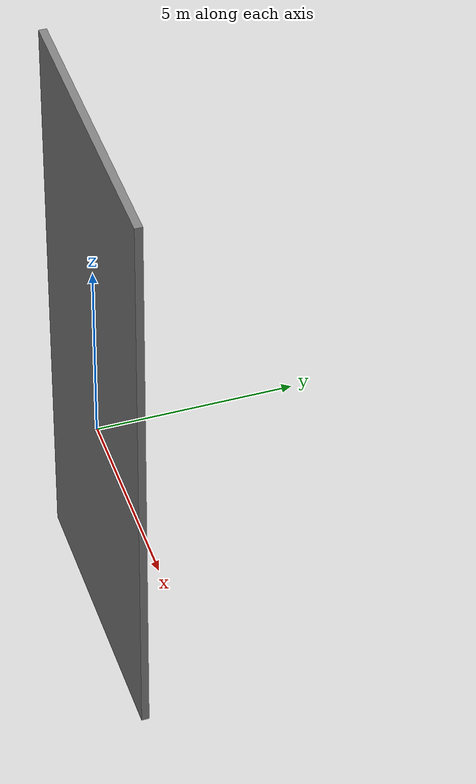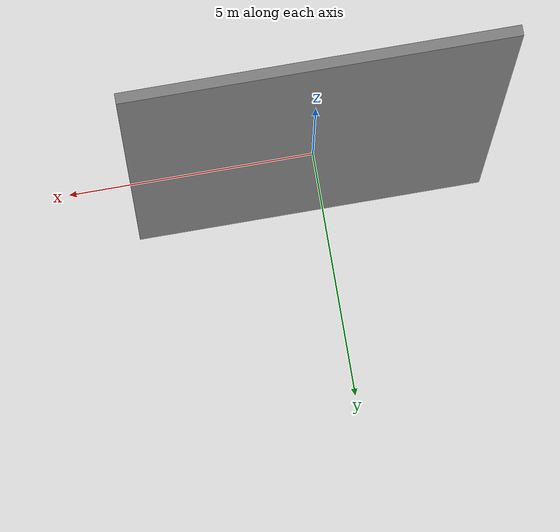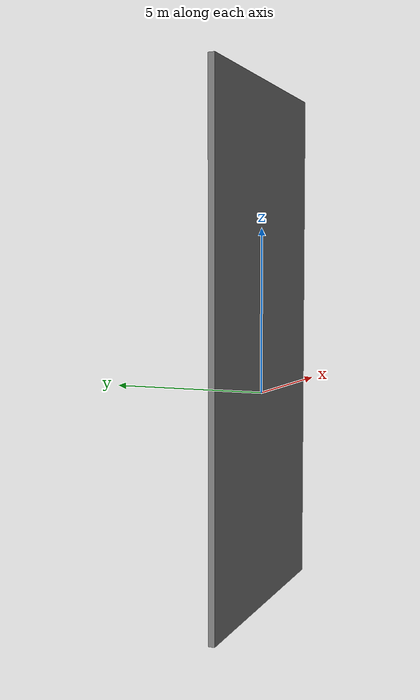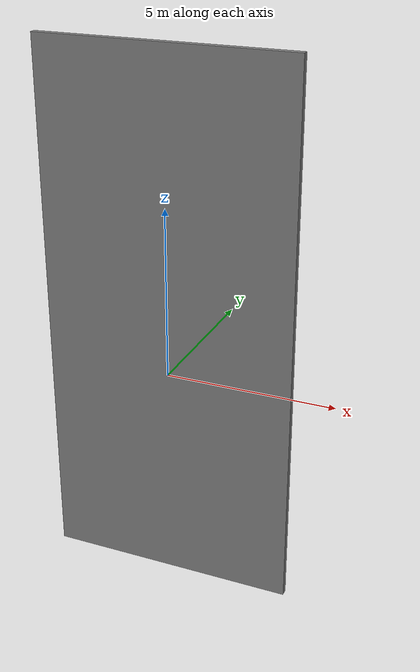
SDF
<?xml version="1.0" ?>
<sdf version="1.6">
  <model name="grey_wall">
    <static>true</static>
    <link name="link">
      <pose>0 0 1.4 0 0 0</pose>
      <collision name="collision">
        <geometry>
          <box>
            <size>7.5 0.2 16</size>
          </box>
        </geometry>
      </collision>
      <visual name="visual">
        <cast_shadows>true</cast_shadows>
        <geometry>
          <box>
            <size>7.5 0.2 16</size>
          </box>
        </geometry>
        <material>
            <pbr>
              <metal>
                <albedo_map>materials/textures/grey_wall.png</albedo_map>
              </metal>
            </pbr>
            <ambient>0.5 0.5 0.5 1.0</ambient>
            <diffuse>0.5 0.5 0.5 1.0</diffuse>
            <specular>0.2 0.2 0.2 1.0</specular>
        </material>
      </visual>
    </link>
  </model>
</sdf>
